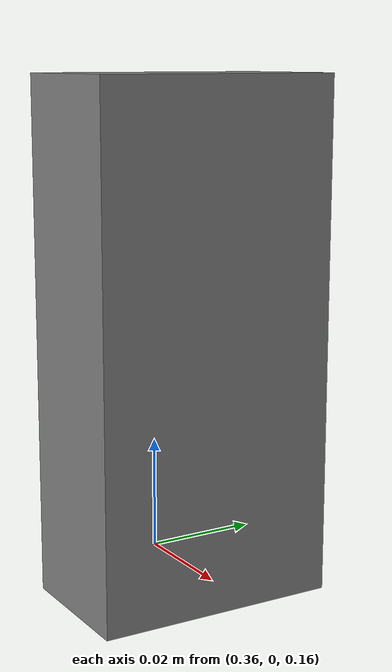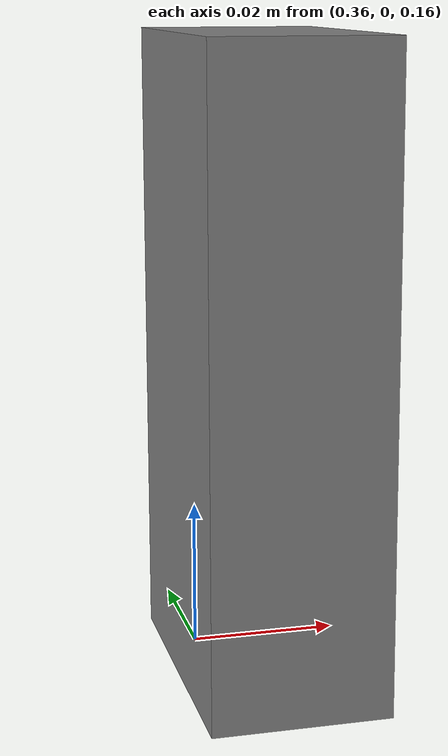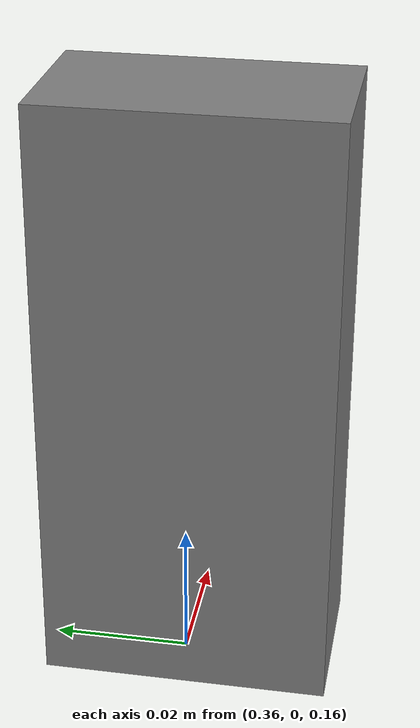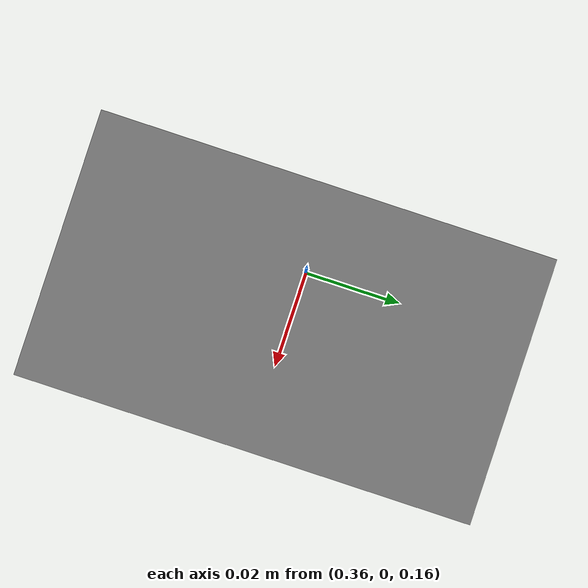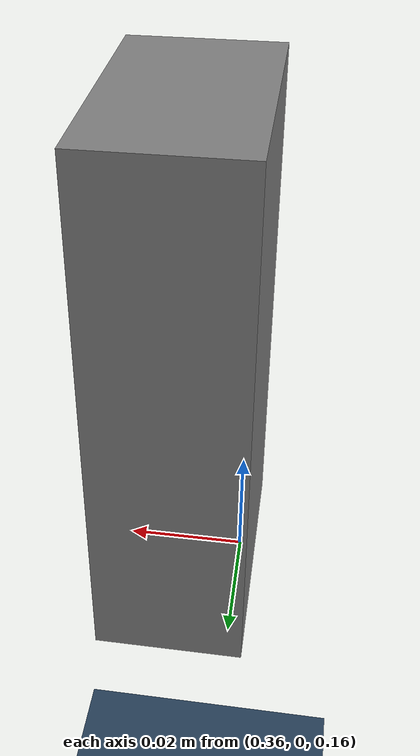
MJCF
<?xml version='1.0' encoding='utf-8'?>
<mujoco model="right_allegro_hand scene">
  <statistic center="0 0 0" extent="0.3" />

  <visual>
    <rgba haze="0.15 0.25 0.35 1" />
    <quality shadowsize="8192" />
    <global azimuth="130" elevation="-40" />

  </visual>

  <asset>
    <texture type="skybox" builtin="gradient" rgb1="0.3 0.5 0.7" rgb2="0 0 0" width="512" height="3072" />
    <texture type="2d" name="groundplane" builtin="checker" mark="edge" rgb1="0.2 0.3 0.4" rgb2="0.1 0.2 0.3" markrgb="0.8 0.8 0.8" width="300" height="300" />
    <material name="groundplane" texture="groundplane" texuniform="true" texrepeat="5 5" reflectance="0.2" />

    <texture name="grid" type="2d" builtin="checker" width="512" height="512" rgb1=".1 .2 .3" rgb2=".2 .3 .4"/>
    <material name="grid" texture="grid" texrepeat="1 1" texuniform="true" reflectance=".2"/>

  </asset>

  <worldbody>
    <light pos="0 0 1" />
    <light pos="0.3 0 1.5" dir="0 0 -1" directional="true" />
    <camera name="top" focal="1.93e-3 1.93e-3" resolution="1280 720" sensorsize="3896e-6 2140e-6"
            pos="0 0 0.6" mode="fixed" quat="1 0 0 0"/>
        <camera name="side" focal="1.93e-3 1.93e-3" resolution="1280 720" sensorsize="3896e-6 2140e-6"
            pos="0 -0.5 0.1" mode="fixed" quat="0.7 0.7 0 0"/>
    <geom name="floor" pos="0 0 0.05" size="0 0 0.05" type="plane" material="grid"  condim="3"/>

	  <body name="mesh_body" pos="0.37 0 0.2" quat="1 0.0 0.0 0.0">

	   <freejoint />

	    <geom name="my_mesh_geom" type="box" size="0.0125 0.0215 0.045" condim="1" mass="0.3"  />
	  </body>

  </worldbody>

</mujoco>
